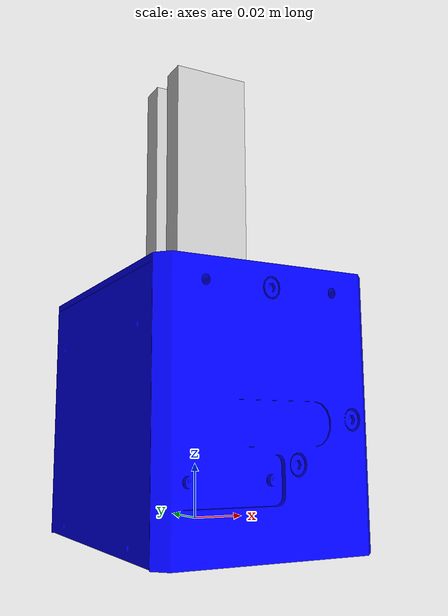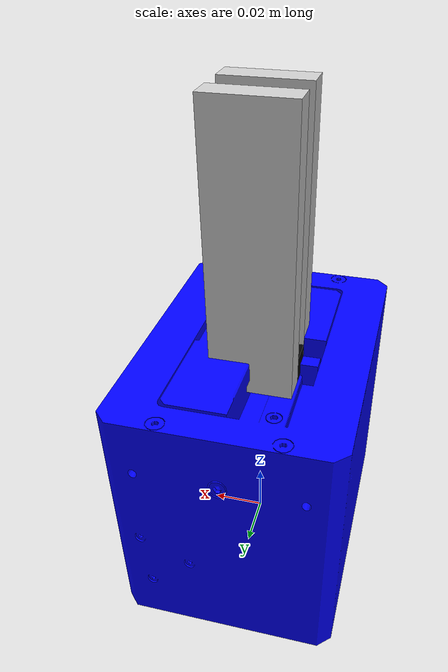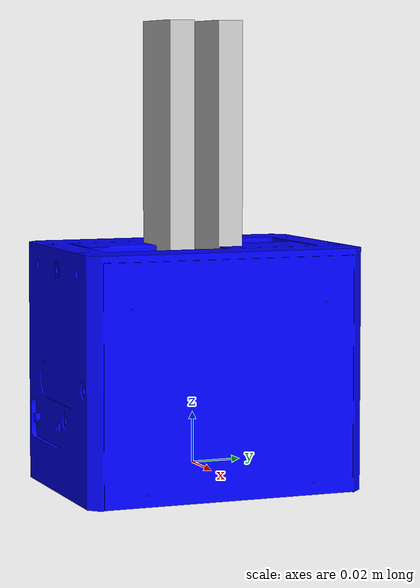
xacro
<?xml version="1.0"?>
<robot xmlns:xacro="http://www.ros.org/wiki/xacro"
  name="schunk_pg70">
  <xacro:include filename="$(find schunk_pg70)/urdf/pg70.urdf.xacro"/>

  <link name="base_link" />

  <xacro:schunk_pg70 name="schunk_pg70" parent="base_link" >
    <origin xyz="0 0 0" rpy="0 0 0" />
  </xacro:schunk_pg70>

 </robot>

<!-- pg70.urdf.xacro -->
<robot xmlns:xacro="http://www.ros.org/wiki/xacro">

  <xacro:macro name="schunk_pg70" params="parent name *origin ">

    <joint name="${name}_base_joint" type="fixed" >
      <parent link="${parent}" />
      <child link="${name}_base_link" />
      <xacro:insert_block name="origin" />
    </joint>

<!--     PALM -->

    <link name="${name}_base_link">
      <visual>
        <geometry>
          <mesh filename="package://schunk_pg70/meshes/pg70.dae" />
        </geometry>
        <material name="blue">
          <color rgba="0 0 1 1"/>
        </material>
      </visual>
      <collision>
        <geometry>
          <mesh filename="package://schunk_pg70/meshes/pg70.dae" />
        </geometry>
	<material name="blue"/>
      </collision>
    </link>

<!-- LEFT FINGER BASE -->

    <joint name="${name}_finger_left_joint" type="prismatic" >
      <parent link="${name}_base_link" />
      <child link="${name}_finger_left_link" />
      <limit effort="100" lower="-0.001" upper="0.04" velocity="2.0"/>
      <origin xyz="0 0 0.0789" rpy="0 0 0"/>
      <axis xyz="0 1 0" />
    </joint>

    <link name="${name}_finger_left_link">
      <visual>
        <geometry>
          <box size="0.03 0.01 0.01"/>
        </geometry>
        <material name="black">
          <color rgba="0 0 0 1"/>
        </material>
      </visual>
      <collision>
        <geometry>
          <box size="0.03 0.01 0.01"/>
        </geometry>
	<material name="black" />
      </collision>
    </link>

<!-- LEFT FINGERTIP -->

    <joint name="${name}_fingertip_left_joint" type="fixed" >
      <parent link="${name}_finger_left_link" />
      <child link="${name}_fingertip_left_link" />
      <origin xyz="0 0.01 0.045" rpy="0 0 0"/>
    </joint>

    <link name="${name}_fingertip_left_link">
      <visual>
        <geometry>
          <box size="0.03 0.01 0.1"/>
        </geometry>
        <material name="silver">
          <color rgba="0.8 0.8 0.8 1"/>
        </material>
      </visual>
      <collision>
        <geometry>
          <box size="0.03 0.01 0.1"/>
        </geometry>
	<material name="black"/>
      </collision>
    </link>

<!-- RIGHT FINGER BASE -->

    <joint name="${name}_finger_right_joint" type="prismatic" >
      <mimic joint="${name}_finger_left_joint" multiplier="1" offset="0"/>
      <parent link="${name}_base_link" />
      <child link="${name}_finger_right_link" />
      <limit effort="100" lower="-0.001" upper="0.04" velocity="2.0"/>
      <origin xyz="0 0 0.0789" rpy="-0 0 0"/>
      <axis xyz="0 -1 0" />
    </joint>

    <link name="${name}_finger_right_link">
      <visual>
        <geometry>
          <box size="0.03 0.01 0.01"/>
        </geometry>
	<material name="black"/>
      </visual>
      <collision>
        <geometry>
          <box size="0.03 0.01 0.01"/>
        </geometry>
	<material name="black"/>
      </collision>
    </link>

<!-- RIGHT FINGERTIP -->

    <joint name="${name}_fingertip_right_joint" type="fixed" >
      <parent link="${name}_finger_right_link" />
      <child link="${name}_fingertip_right_link" />
      <origin xyz="0 -0.01 0.045" rpy="0 0 0"/>
   </joint>

    <link name="${name}_fingertip_right_link">
      <visual>
        <geometry>
          <box size="0.03 0.01 0.1"/>
        </geometry>
	<material name="silver" />

      </visual>
      <collision>
        <geometry>
          <box size="0.03 0.01 0.1"/>
        </geometry>
	<material name="black"/>
     </collision>
    </link>

  </xacro:macro>
</robot>
